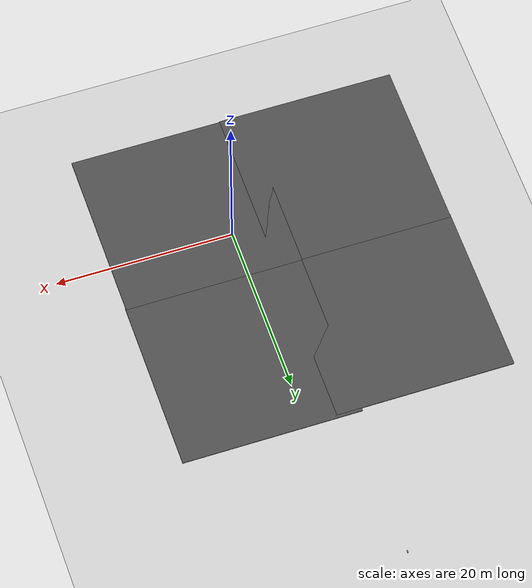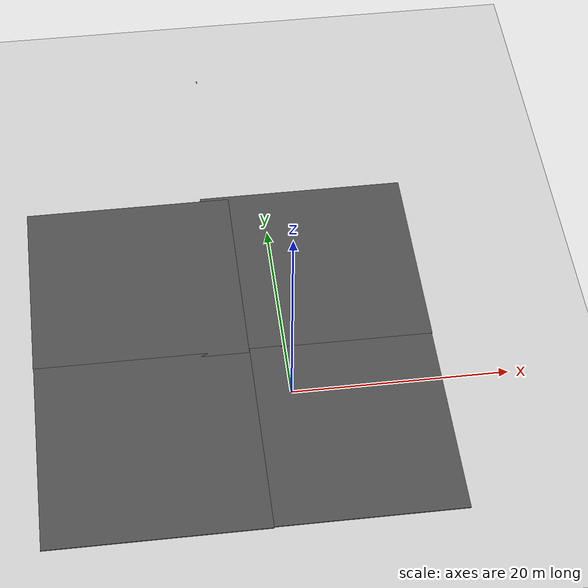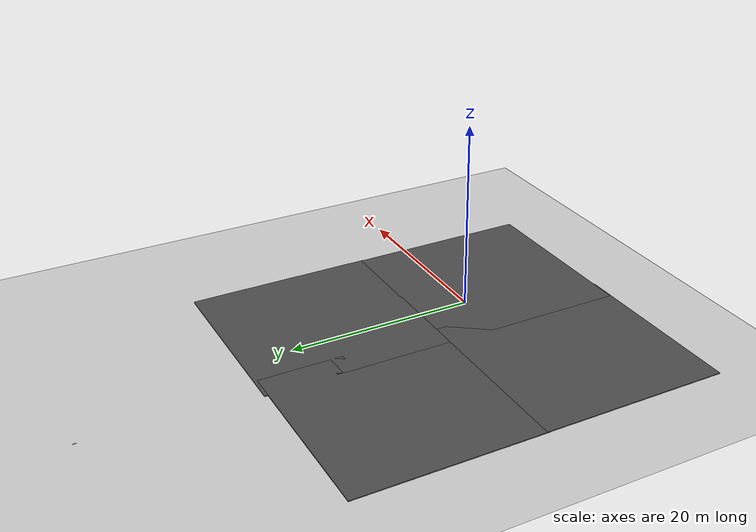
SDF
<sdf version="1.6">
 <world name="default">
  <light name="sun" type="directional">
   <pose>0 0 10 0 -0 0</pose>
   <diffuse>0.8 0.8 0.8 1</diffuse>
   <specular>0.2 0.2 0.2 1</specular>
   <attenuation>
    <range>1000</range>
    <constant>0.9</constant>
    <linear>0.01</linear>
    <quadratic>0.001</quadratic>
   </attenuation>
   <direction>-0.5 0.1 -0.9</direction>
  </light>
  <model name="ground_plane">
   <static>1</static>
   <link name="link">
    <collision name="collision">
     <geometry><plane><normal>0 0 1</normal><size>100 100</size></plane></geometry>
     <surface>
      <contact><collide_bitmask>65535</collide_bitmask></contact>
      <friction><ode><mu>100</mu><mu2>50</mu2></ode></friction>
     </surface>
    </collision>
    <visual name="visual">
     <cast_shadows>0</cast_shadows>
     <geometry><plane><normal>0 0 1</normal><size>100 100</size></plane></geometry>
     <material>
      <script><uri>file://media/materials/scripts/gazebo.material</uri><name>Gazebo/Grey</name></script>
     </material>
    </visual>
   </link>
  </model>
  <gravity>0 0 -9.8</gravity>
  <magnetic_field>6e-06 2.3e-05 -4.2e-05</magnetic_field>
  <atmosphere type="adiabatic"/>
  <physics name="default_physics" default="0" type="ode">
   <max_step_size>0.001</max_step_size>
   <real_time_factor>1</real_time_factor>
   <real_time_update_rate>1000</real_time_update_rate>
  </physics>
  <scene><ambient>0.4 0.4 0.4 1</ambient><background>0.7 0.7 0.7 1</background><shadows>1</shadows></scene>
  <spherical_coordinates>
   <surface_model>EARTH_WGS84</surface_model>
   <latitude_deg>0</latitude_deg>
   <longitude_deg>0</longitude_deg>
   <elevation>0</elevation>
   <heading_deg>0</heading_deg>
  </spherical_coordinates>
  <model name="wooden_peg_board">
   <link name="wooden_board::base">
    <pose>0 0 0.00523 0 -0 0</pose>
    <inertial>
     <mass>0.2765</mass>
     <inertia>
      <ixx>0.0025148</ixx>
      <ixy>0</ixy>
      <ixz>0</ixz>
      <iyy>0.00024037</iyy>
      <iyz>0</iyz>
      <izz>0.00275013</izz>
     </inertia>
    </inertial>
    <collision name="collision">
     <geometry><box><size>0.1016 0.3302 0.01046</size></box></geometry>
     <surface>
      <contact>
       <poissons_ratio>0.347</poissons_ratio>
       <elastic_modulus>8.8e+09</elastic_modulus>
       <ode><kp>100000</kp><kd>100</kd><max_vel>100</max_vel><min_depth>0.001</min_depth></ode>
      </contact>
      <friction>
       <torsional>
        <coefficient>1</coefficient>
        <use_patch_radius>0</use_patch_radius>
        <surface_radius>0.01</surface_radius>
       </torsional>
      </friction>
     </surface>
    </collision>
    <visual name="visual">
     <geometry><box><size>0.1016 0.3302 0.01046</size></box></geometry>
     <material>
      <script><uri>file://media/materials/scripts/gazebo.material</uri><name>Gazebo/Wood</name></script>
     </material>
    </visual>
    <visual name="tee_nut_1">
     <pose>0 -0.116 0 0 -0 0</pose>
     <geometry><cylinder><radius>0.00635</radius><length>0.0105646</length></cylinder></geometry>
     <material>
      <script><uri>file://media/materials/scripts/gazebo.material</uri><name>Gazebo/Grey</name></script>
     </material>
    </visual>
    <visual name="tee_nut_2">
     <pose>0 -0.038 0 0 -0 0</pose>
     <geometry><cylinder><radius>0.00635</radius><length>0.0105646</length></cylinder></geometry>
     <material>
      <script><uri>file://media/materials/scripts/gazebo.material</uri><name>Gazebo/Grey</name></script>
     </material>
    </visual>
    <visual name="tee_nut_3">
     <pose>0 0.038 0 0 -0 0</pose>
     <geometry><cylinder><radius>0.00635</radius><length>0.0105646</length></cylinder></geometry>
     <material>
      <script><uri>file://media/materials/scripts/gazebo.material</uri><name>Gazebo/Grey</name></script>
     </material>
    </visual>
    <visual name="tee_nut_4">
     <pose>0 0.116 0 0 -0 0</pose>
     <geometry><cylinder><radius>0.00635</radius><length>0.0105646</length></cylinder></geometry>
     <material>
      <script><uri>file://media/materials/scripts/gazebo.material</uri><name>Gazebo/Grey</name></script>
     </material>
    </visual>
   </link>
   <link name="peg::link">
    <pose>0 0.116 0.04 0 -0 0</pose>
    <inertial>
     <mass>0.0175</mass>
     <inertia>
      <ixx>9.74923e-06</ixx>
      <ixy>0</ixy>
      <ixz>0</ixz>
      <iyy>9.74923e-06</iyy>
      <iyz>0</iyz>
      <izz>8.31797e-07</izz>
     </inertia>
    </inertial>
    <collision name="collision">
     <geometry><cylinder><radius>0.00975</radius><length>0.08</length></cylinder></geometry>
     <surface>
      <contact>
       <poissons_ratio>0.347</poissons_ratio>
       <elastic_modulus>8.8e+09</elastic_modulus>
       <ode><kp>100000</kp><kd>100</kd><max_vel>100</max_vel><min_depth>0.001</min_depth></ode>
      </contact>
      <friction>
       <torsional>
        <coefficient>1</coefficient>
        <use_patch_radius>0</use_patch_radius>
        <surface_radius>0.01</surface_radius>
       </torsional>
      </friction>
     </surface>
    </collision>
    <visual name="visual">
     <geometry><cylinder><radius>0.00975</radius><length>0.08</length></cylinder></geometry>
     <material>
      <script><uri>file://media/materials/scripts/gazebo.material</uri><name>Gazebo/Wood</name></script>
     </material>
    </visual>
   </link>
   <joint name="board_peg" type="revolute">
    <parent>wooden_board::base</parent>
    <child>peg::link</child>
    <axis>
     <xyz>0 0 1</xyz>
     <limit><upper>0</upper><lower>0</lower></limit>
     <use_parent_model_frame>0</use_parent_model_frame>
     <dynamics><spring_reference>0</spring_reference><spring_stiffness>0</spring_stiffness></dynamics>
    </axis>
   </joint>
   <pose>-4.94594 42.7742 0 0 -0 0</pose>
  </model>
  <model name="asphalt_plane">
   <static>1</static>
   <link name="link">
    <collision name="collision"><geometry><box><size>20 20 0.1</size></box></geometry></collision>
    <visual name="visual">
     <cast_shadows>0</cast_shadows>
     <geometry><box><size>20 20 0.1</size></box></geometry>
     <material>
      <script>
       <uri>model://asphalt_plane/materials/scripts</uri>
       <uri>model://asphalt_plane/materials/textures</uri>
       <name>vrc/asphalt</name>
      </script>
     </material>
    </visual>
   </link>
   <pose>-13.3533 15.065 0 0 -0 0</pose>
  </model>
  <model name="asphalt_plane_clone">
   <static>1</static>
   <link name="link">
    <collision name="collision"><geometry><box><size>20 20 0.1</size></box></geometry></collision>
    <visual name="visual">
     <cast_shadows>0</cast_shadows>
     <geometry><box><size>20 20 0.1</size></box></geometry>
     <material>
      <script>
       <uri>model://asphalt_plane/materials/scripts</uri>
       <uri>model://asphalt_plane/materials/textures</uri>
       <name>vrc/asphalt</name>
      </script>
     </material>
    </visual>
   </link>
   <pose>-13.3209 -4.57222 0 0 -0 0</pose>
  </model>
  <model name="asphalt_plane_clone_0">
   <static>1</static>
   <link name="link">
    <collision name="collision"><geometry><box><size>20 20 0.1</size></box></geometry></collision>
    <visual name="visual">
     <cast_shadows>0</cast_shadows>
     <geometry><box><size>20 20 0.1</size></box></geometry>
     <material>
      <script>
       <uri>model://asphalt_plane/materials/scripts</uri>
       <uri>model://asphalt_plane/materials/textures</uri>
       <name>vrc/asphalt</name>
      </script>
     </material>
    </visual>
   </link>
   <pose>3.83279 -4.47818 0 0 -0 0</pose>
  </model>
  <model name="asphalt_plane_clone_1">
   <static>1</static>
   <link name="link">
    <collision name="collision"><geometry><box><size>20 20 0.1</size></box></geometry></collision>
    <visual name="visual">
     <cast_shadows>0</cast_shadows>
     <geometry><box><size>20 20 0.1</size></box></geometry>
     <material>
      <script>
       <uri>model://asphalt_plane/materials/scripts</uri>
       <uri>model://asphalt_plane/materials/textures</uri>
       <name>vrc/asphalt</name>
      </script>
     </material>
    </visual>
   </link>
   <pose>3.88892 15.4119 0 0 -0 0</pose>
  </model>
  <plugin name="ros_interface_plugin" filename="librotors_gazebo_ros_interface_plugin.so"/>
 </world>
 <plugin name="ros_interface_plugin" filename="librotors_gazebo_ros_interface_plugin.so"/>
</sdf>
